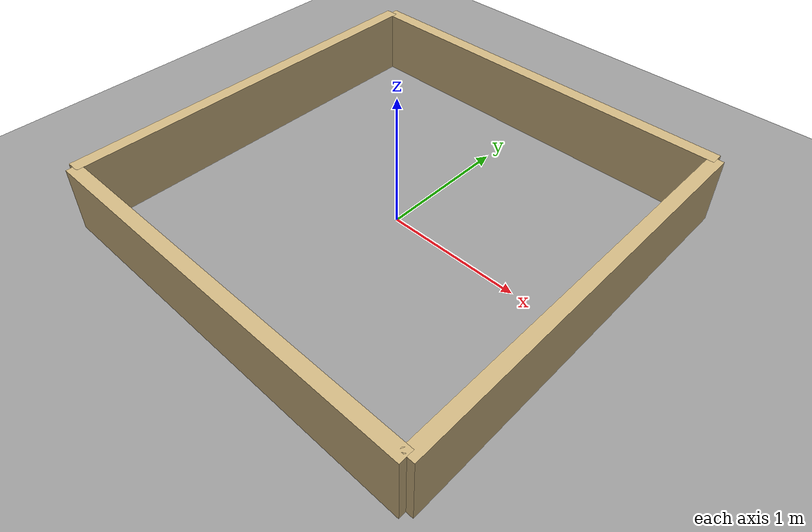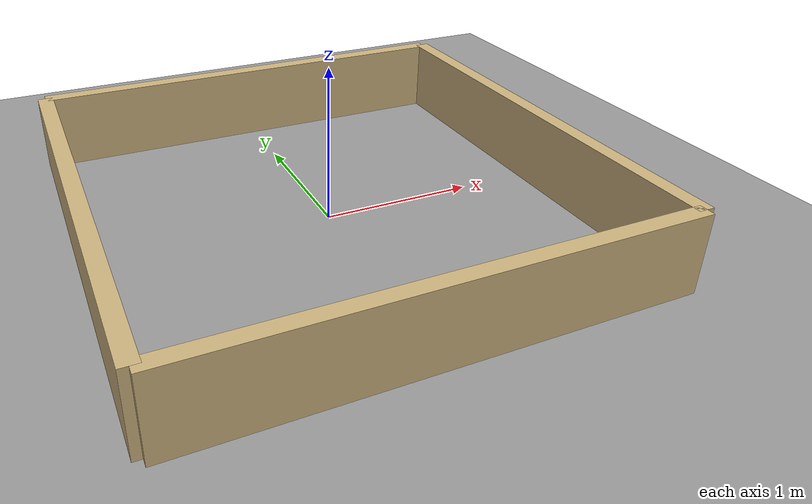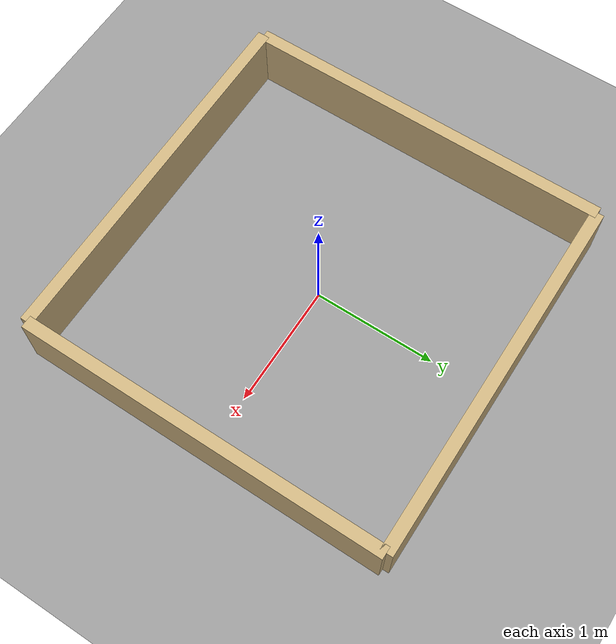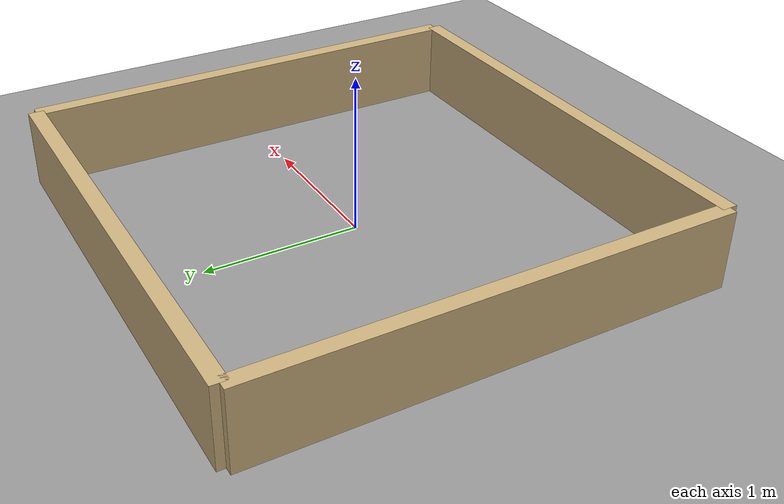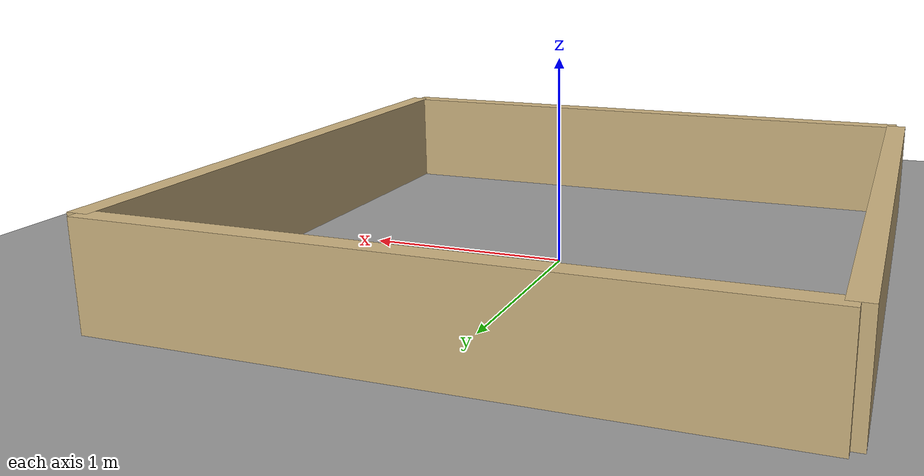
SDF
<?xml version="1.0" ?>
<sdf version="1.8">
  <world name="tiny_world">

    <physics name="1ms" type="ignored">
      <max_step_size>0.001</max_step_size>
      <real_time_factor>1.0</real_time_factor>
    </physics>

    <plugin filename="gz-sim-physics-system" name="gz::sim::systems::Physics"/>
    <plugin filename="gz-sim-user-commands-system" name="gz::sim::systems::UserCommands"/>
    <plugin filename="gz-sim-scene-broadcaster-system" name="gz::sim::systems::SceneBroadcaster"/>
    <plugin filename="gz-sim-sensors-system" name="gz::sim::systems::Sensors">
      <render_engine>ogre2</render_engine>
    </plugin>

    <light type="directional" name="sun">
      <cast_shadows>true</cast_shadows>
      <pose>0 0 10 0 0 0</pose>
      <diffuse>0.8 0.8 0.8 1</diffuse>
      <specular>0.2 0.2 0.2 1</specular>
      <direction>-0.5 0.1 -0.9</direction>
    </light>

    <!-- Ground plane -->
    <model name="ground_plane">
      <static>true</static>
      <link name="link">
        <collision name="collision">
          <geometry><plane><normal>0 0 1</normal><size>10 10</size></plane></geometry>
        </collision>
        <visual name="visual">
          <geometry><plane><normal>0 0 1</normal><size>10 10</size></plane></geometry>
          <material>
            <ambient>0.6 0.6 0.6 1</ambient>
            <diffuse>0.6 0.6 0.6 1</diffuse>
          </material>
        </visual>
      </link>
    </model>

    <!-- Four walls of a ~3m x 3m room.
         tiny_bot starts at (0,0). The room extends from (-1.5, -1.5) to (1.5, 1.5).
         The "front" wall (at x=+1.5) is what obstacle_stop will react to. -->
    <model name="wall_front">
      <static>true</static>
      <pose>1.5 0 0.25 0 0 0</pose>
      <link name="link">
        <collision name="c"><geometry><box><size>0.1 3.0 0.5</size></box></geometry></collision>
        <visual name="v">
          <geometry><box><size>0.1 3.0 0.5</size></box></geometry>
          <material><ambient>0.8 0.7 0.5 1</ambient><diffuse>0.8 0.7 0.5 1</diffuse></material>
        </visual>
      </link>
    </model>

    <model name="wall_back">
      <static>true</static>
      <pose>-1.5 0 0.25 0 0 0</pose>
      <link name="link">
        <collision name="c"><geometry><box><size>0.1 3.0 0.5</size></box></geometry></collision>
        <visual name="v">
          <geometry><box><size>0.1 3.0 0.5</size></box></geometry>
          <material><ambient>0.8 0.7 0.5 1</ambient><diffuse>0.8 0.7 0.5 1</diffuse></material>
        </visual>
      </link>
    </model>

    <model name="wall_left">
      <static>true</static>
      <pose>0 1.5 0.25 0 0 0</pose>
      <link name="link">
        <collision name="c"><geometry><box><size>3.0 0.1 0.5</size></box></geometry></collision>
        <visual name="v">
          <geometry><box><size>3.0 0.1 0.5</size></box></geometry>
          <material><ambient>0.8 0.7 0.5 1</ambient><diffuse>0.8 0.7 0.5 1</diffuse></material>
        </visual>
      </link>
    </model>

    <model name="wall_right">
      <static>true</static>
      <pose>0 -1.5 0.25 0 0 0</pose>
      <link name="link">
        <collision name="c"><geometry><box><size>3.0 0.1 0.5</size></box></geometry></collision>
        <visual name="v">
          <geometry><box><size>3.0 0.1 0.5</size></box></geometry>
          <material><ambient>0.8 0.7 0.5 1</ambient><diffuse>0.8 0.7 0.5 1</diffuse></material>
        </visual>
      </link>
    </model>

  </world>
</sdf>
